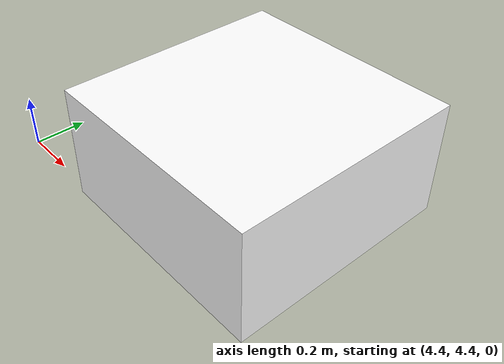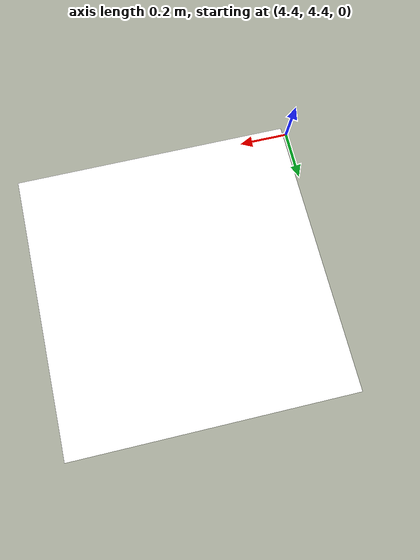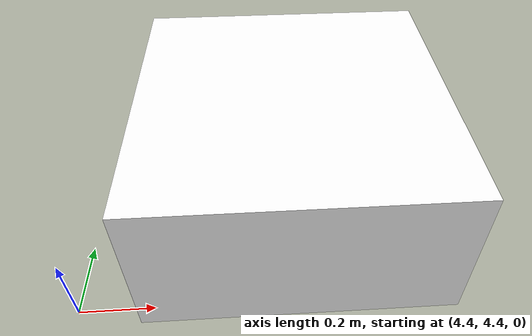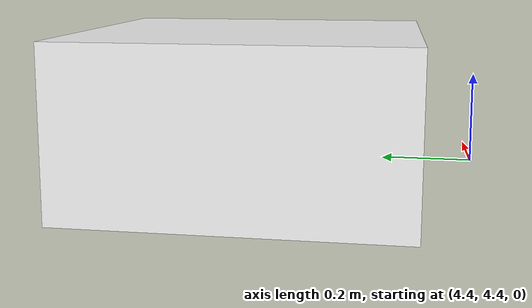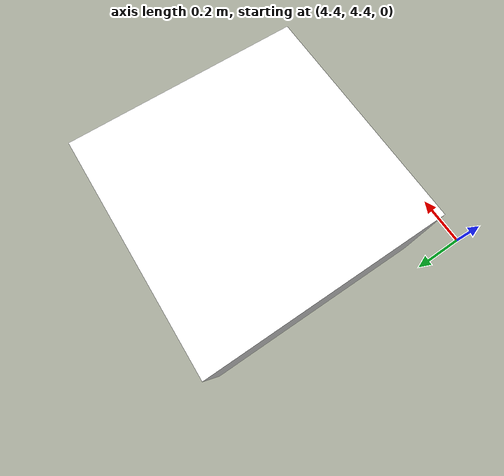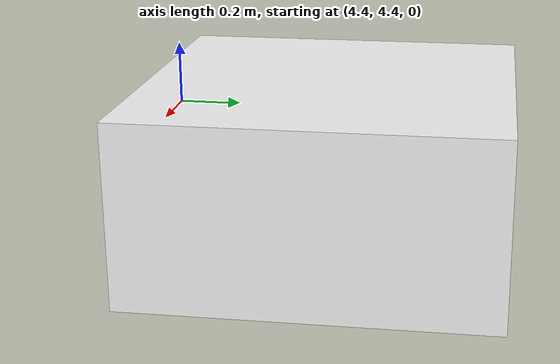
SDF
<?xml version="1.0" ?>
<sdf version="1.6">
  <model name="station_with_qr">
    <static>false</static>
    <link name="link">
      <visual name="visual">
        <geometry>
          <box>
            <size>1 1 0.5</size>
          </box>
        </geometry>
        <material>
          <ambient>1 1 1 1</ambient>
          <diffuse>1 1 1 1</diffuse>
        </material>
      </visual>

      <!-- QR 코드 텍스처로 사용될 이미지 -->
      <visual name="qr_visual">
        <geometry>
          <box>
            <size>0.1 0.1 0.01</size>
          </box>
        </geometry>
        <material>
          <texture>file:///home/opulent/catkin_ws/src/qr_station/textures/qr.png</texture>
        </material>
      </visual>

      <!-- pose 값을 직접 설정하거나 동적으로 주입할 수 있도록 설정 -->
      <pose>5.0 5.0 0.0 0 0 0</pose> <!-- 여기서 XYZ 값을 원하는 값으로 설정 -->
    </link>
  </model>
</sdf>
